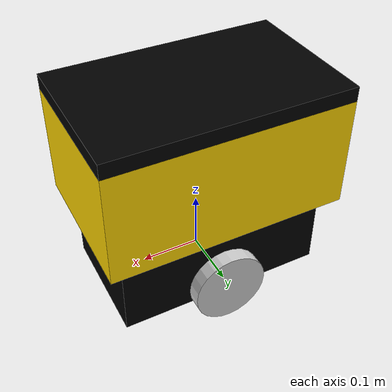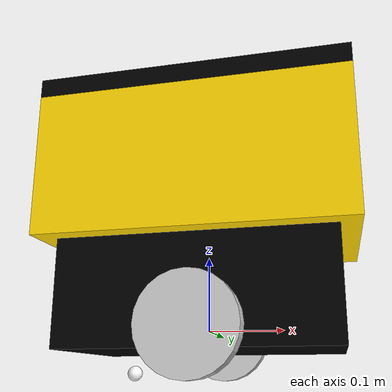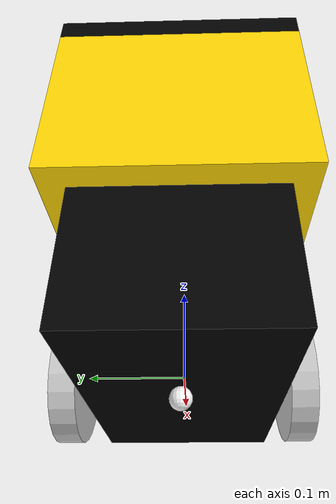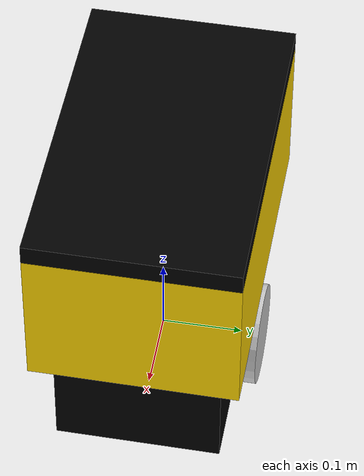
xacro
<?xml version="1.0"?>
<robot xmlns:xacro="http://www.ros.org/wiki/xacro" >

    <xacro:include filename="inertial_macros.xacro"/>

    <xacro:property name="chassis_length" value="0.3556"/>
    <xacro:property name="chassis_width" value="0.2032"/>
    <xacro:property name="chassis_height" value="0.1397"/>
    <xacro:property name="chassis_mass" value="1.0"/>
    <xacro:property name="wheel_radius" value="0.0635"/>
    <xacro:property name="wheel_thickness" value="0.0254"/>
    <xacro:property name="wheel_mass" value="0.05"/>
    <xacro:property name="wheel_offset_x" value="0.1778"/>
    <xacro:property name="wheel_offset_y" value="0.1143"/>
    <xacro:property name="wheel_offset_z" value="0.026035"/>
    <xacro:property name="caster_wheel_radius" value="0.01"/>
    <xacro:property name="caster_wheel_mass" value="0.01"/>
    <xacro:property name="caster_wheel_offset_x" value="0.075"/>
    <xacro:property name="caster_wheel_offset_z" value="${wheel_offset_z - wheel_radius + caster_wheel_radius}"/>

    <xacro:property name="chassis_top_length" value="0.4064"/>
    <xacro:property name="chassis_top_width" value="0.254"/>
    <xacro:property name="chassis_top_height" value="0.1905"/>
    <xacro:property name="chassis_top_mass" value="0.0"/>
    <xacro:property name="lid_thickness" value="0.0254"/>

    <material name="white">
        <color rgba="1 1 1 1" />
    </material>

    <material name="orange">
        <color rgba="1 0.3 0.1 1"/>
    </material>

    <material name="blue">
        <color rgba="0.2 0.2 1 1"/>
    </material>

    <material name="black">
        <color rgba="0 0 0 1"/>
    </material>

    <material name="red">
        <color rgba="1 0 0 1"/>
    </material>

    <material name="gray">
        <color rgba="0.8 0.8 0.8 1"/>
    </material>

    <material name="gold">
        <color rgba="1 0.84 0 1"/>
    </material>

    <!-- BASE LINK -->

    <link name="base_link">

    </link>

    <!-- BASE_FOOTPRINT LINK -->

    <joint name="base_footprint_joint" type="fixed">
        <parent link="base_link"/>
        <child link="base_footprint"/>
        <origin xyz="0 0 0" rpy="0 0 0"/>
    </joint>

    <link name="base_footprint">
    </link>

    <!-- CHASSIS LINK -->

    <joint name="chassis_joint" type="fixed">
        <parent link="base_link"/>
        <child link="chassis"/>
        <origin xyz="${-wheel_offset_x} 0 ${-wheel_offset_z}"/>
    </joint>

    <link name="chassis">
        <visual>
            <origin xyz="${chassis_length/2} 0 ${chassis_height/2}"/>
            <geometry>
                <box size="${chassis_length} ${chassis_width} ${chassis_height}"/>
            </geometry>
            <material name="black"/>
        </visual>
        <collision>
            <origin xyz="${chassis_length/2} 0 ${chassis_height/2}"/>
            <geometry>
                <box size="${chassis_length} ${chassis_width} ${chassis_height}"/>
            </geometry>
        </collision>
        <xacro:inertial_box mass="0.5" x="${chassis_length}" y="${chassis_width}" z="${chassis_height}">
            <origin xyz="${chassis_length/2} 0 ${chassis_height/2}" rpy="0 0 0"/>
        </xacro:inertial_box>
    </link>

    <gazebo reference="chassis">
        <material>Gazebo/Black</material>
    </gazebo>

    <!-- CHASSIS TOP LINK -->

    <joint name="chassis_top_joint" type="fixed">
        <origin xyz="${chassis_length/2} 0 ${chassis_height}" rpy="0 0 0" />
        <parent link="chassis"/>
        <child link="chassis_top"/>
    </joint>

    <link name="chassis_top">
        <visual>
            <origin xyz="0 0 ${chassis_top_height/2}"/>
            <geometry>
                <box size="${chassis_top_length} ${chassis_top_width} ${chassis_top_height}" />
            </geometry>
            <material name="gold" />
        </visual>
        <collision>
            <origin xyz="0 0 0" rpy="0 0 0" />
            <geometry>
                <box size="${chassis_top_length} ${chassis_top_width} ${chassis_top_height}" />
            </geometry>
        </collision>
    </link>

    <gazebo reference="chassis_top">
        <material>Gazebo/Gold</material>
    </gazebo>

    <!-- LID LINK -->

    <joint name="lid_joint" type="fixed">
        <origin xyz="0 0 ${chassis_top_height}" />
        <parent link="chassis_top"/>
        <child link="lid"/>
    </joint>

    <link name="lid">
        <visual>
            <origin xyz="0 0 ${lid_thickness/2}" />
            <geometry>
                <box size="${chassis_top_length} ${chassis_top_width} ${lid_thickness}" />
            </geometry>
            <material name="black" />
        </visual>
        <collision>
            <origin xyz="0 0 ${lid_thickness}" />
            <geometry>
                <box size="${chassis_top_length} ${chassis_top_width} ${lid_thickness}" />
            </geometry>
        </collision>
    </link>

    <gazebo reference="lid">
        <material>Gazebo/Black</material>
    </gazebo>

    <!-- LEFT WHEEL LINK -->

    <joint name="left_wheel_joint" type="continuous">
        <parent link="base_link"/>
        <child link="left_wheel"/>
        <origin xyz="0 ${wheel_offset_y} 0" rpy="-${pi/2} 0 0" />
        <axis xyz="0 0 1"/>
    </joint>

    <link name="left_wheel">
        <visual>
            <geometry>
                <cylinder radius="${wheel_radius}" length="${wheel_thickness}"/>
            </geometry>
            <material name="gray"/>
        </visual>
        <collision>
            <geometry>
                <sphere radius="${wheel_radius}"/>
            </geometry>
        </collision>
        <xacro:inertial_cylinder mass="${wheel_mass}" length="${wheel_thickness}" radius="${wheel_radius}">
            <origin xyz="0 0 0" rpy="0 0 0"/>
        </xacro:inertial_cylinder>
    </link>

    <gazebo reference="left_wheel">
        <material>Gazebo/Gray</material>
    </gazebo>

    <!-- RIGHT WHEEL LINK -->

    <joint name="right_wheel_joint" type="continuous">
        <parent link="base_link"/>
        <child link="right_wheel"/>
        <origin xyz="0 ${-wheel_offset_y} 0" rpy="${pi/2} 0 0" />
        <axis xyz="0 0 -1"/>
    </joint>

    <link name="right_wheel">
        <visual>
            <geometry>
                <cylinder radius="${wheel_radius}" length="${wheel_thickness}"/>
            </geometry>
            <material name="gray"/>
        </visual>
        <collision>
            <geometry>
                <sphere radius="${wheel_radius}"/>
            </geometry>
        </collision>
        <xacro:inertial_cylinder mass="${wheel_mass}" length="${wheel_thickness}" radius="${wheel_radius}">
            <origin xyz="0 0 0" rpy="0 0 0"/>
        </xacro:inertial_cylinder>
    </link>

    <gazebo reference="right_wheel">
        <material>Gazebo/Gray</material>
    </gazebo>

    <!-- BACK CASTER WHEEL LINK -->

    <joint name="caster_wheel_joint" type="fixed">
        <parent link="chassis"/>
        <child link="caster_wheel"/>
        <origin xyz="${caster_wheel_offset_x} 0 ${caster_wheel_offset_z}"/>
    </joint>

    <link name="caster_wheel">
        <visual>
            <geometry>
                <sphere radius="${caster_wheel_radius}"/>
            </geometry>
            <material name="white"/>
        </visual>
        <collision>
            <geometry>
                <sphere radius="${caster_wheel_radius}"/>
            </geometry>
        </collision>
        <xacro:inertial_sphere mass="${caster_wheel_mass}" radius="${caster_wheel_radius}">
            <origin xyz="0 0 0" rpy="0 0 0"/>
        </xacro:inertial_sphere>
    </link>

    <gazebo reference="caster_wheel">
        <material>Gazebo/White</material>
        <mu1 value="0.001"/>
        <mu2 value="0.001"/>
    </gazebo>

</robot>
